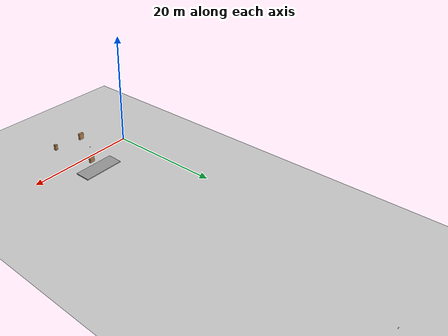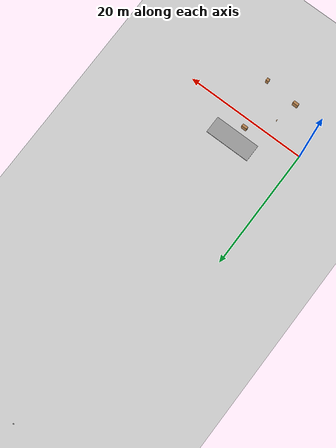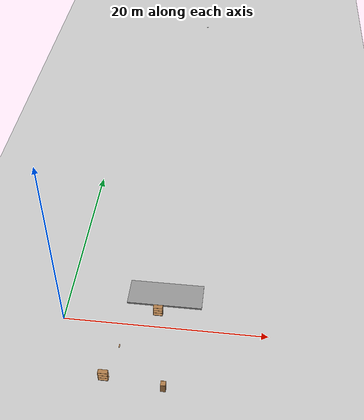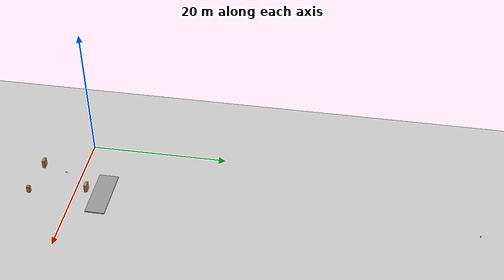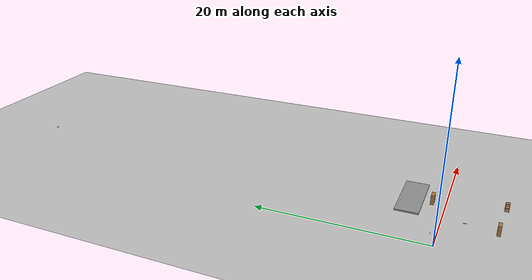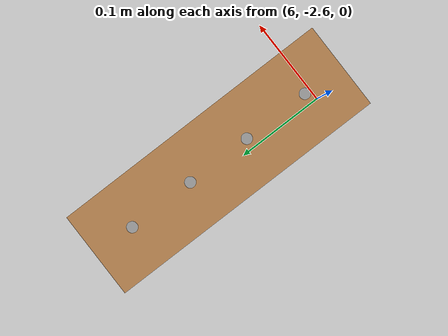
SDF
<sdf version="1.7">
 <world name="default">
  <physics type="ode">
   <ode>
    <solver>
     <type>quick</type>
     <iters>100</iters>
     <sor>1</sor>
     <use_dynamic_moi_rescaling>0</use_dynamic_moi_rescaling>
    </solver>
    <constraints>
     <cfm>0</cfm>
     <erp>0.9</erp>
     <contact_max_correcting_vel>0.1</contact_max_correcting_vel>
     <contact_surface_layer>0</contact_surface_layer>
    </constraints>
   </ode>
   <real_time_update_rate>-1</real_time_update_rate>
   <max_step_size>0.001</max_step_size>
   <real_time_factor>1</real_time_factor>
  </physics>
  <model name="ground_plane">
   <static>1</static>
   <link name="link">
    <collision name="collision">
     <geometry><plane><normal>0 0 1</normal><size>5000 5000</size></plane></geometry>
     <surface><friction><ode><mu>1</mu><mu2>1</mu2></ode></friction></surface>
    </collision>
    <visual name="runway">
     <pose>0 0 0.005 0 -0 0</pose>
     <cast_shadows>0</cast_shadows>
     <geometry><plane><normal>0 0 1</normal><size>1829 45</size></plane></geometry>
     <material>
      <script><uri>file://media/materials/scripts/gazebo.material</uri><name>Gazebo/Runway</name></script>
     </material>
    </visual>
    <visual name="grass">
     <pose>0 0 -0.1 0 -0 0</pose>
     <cast_shadows>0</cast_shadows>
     <geometry><plane><normal>0 0 1</normal><size>5000 5000</size></plane></geometry>
     <material>
      <script><uri>file://media/materials/scripts/gazebo.material</uri><name>Gazebo/Grass</name></script>
     </material>
    </visual>
   </link>
  </model>
  <light name="sun" type="directional">
   <pose>0 0 10 0 -0 0</pose>
   <diffuse>0.8 0.8 0.8 1</diffuse>
   <specular>0.2 0.2 0.2 1</specular>
   <attenuation>
    <range>1000</range>
    <constant>0.9</constant>
    <linear>0.01</linear>
    <quadratic>0.001</quadratic>
   </attenuation>
   <direction>-0.5 0.1 -0.9</direction>
   <spot><inner_angle>0</inner_angle><outer_angle>0</outer_angle><falloff>0</falloff></spot>
  </light>
  <gravity>0 0 -9.8</gravity>
  <magnetic_field>6e-06 2.3e-05 -4.2e-05</magnetic_field>
  <atmosphere type="adiabatic"/>
  <scene><ambient>0.4 0.4 0.4 1</ambient><background>0.7 0.7 0.7 1</background><shadows>1</shadows></scene>
  <spherical_coordinates>
   <surface_model>EARTH_WGS84</surface_model>
   <latitude_deg>0</latitude_deg>
   <longitude_deg>0</longitude_deg>
   <elevation>0</elevation>
   <heading_deg>0</heading_deg>
  </spherical_coordinates>
  <model name="grey_wall">
   <static>1</static>
   <link name="link">
    <pose>0 0 1.4 0 -0 0</pose>
    <collision name="collision"><geometry><box><size>7.5 0.2 2.8</size></box></geometry></collision>
    <visual name="visual">
     <cast_shadows>0</cast_shadows>
     <geometry><box><size>7.5 0.2 2.8</size></box></geometry>
     <material>
      <script>
       <uri>model://grey_wall/materials/scripts</uri>
       <uri>model://grey_wall/materials/textures</uri>
       <name>vrc/grey_wall</name>
      </script>
     </material>
    </visual>
   </link>
   <pose>9.62817 5.29875 0 1.56197 -0 0</pose>
  </model>
  <model name="bookshelf">
   <static>1</static>
   <link name="link">
    <inertial><mass>1</mass></inertial>
    <collision name="back">
     <pose>0 0.005 0.6 0 -0 0</pose>
     <geometry><box><size>0.9 0.01 1.2</size></box></geometry>
    </collision>
    <visual name="visual1">
     <pose>0 0.005 0.6 0 -0 0</pose>
     <geometry><box><size>0.9 0.01 1.2</size></box></geometry>
     <material>
      <script><uri>file://media/materials/scripts/gazebo.material</uri><name>Gazebo/Wood</name></script>
     </material>
    </visual>
    <collision name="left_side">
     <pose>0.45 -0.195 0.6 0 -0 0</pose>
     <geometry><box><size>0.02 0.4 1.2</size></box></geometry>
    </collision>
    <visual name="visual2">
     <pose>0.45 -0.195 0.6 0 -0 0</pose>
     <geometry><box><size>0.02 0.4 1.2</size></box></geometry>
     <material>
      <script><uri>file://media/materials/scripts/gazebo.material</uri><name>Gazebo/Wood</name></script>
     </material>
    </visual>
    <collision name="right_side">
     <pose>-0.45 -0.195 0.6 0 -0 0</pose>
     <geometry><box><size>0.02 0.4 1.2</size></box></geometry>
    </collision>
    <visual name="visual3">
     <pose>-0.45 -0.195 0.6 0 -0 0</pose>
     <geometry><box><size>0.02 0.4 1.2</size></box></geometry>
     <material>
      <script><uri>file://media/materials/scripts/gazebo.material</uri><name>Gazebo/Wood</name></script>
     </material>
    </visual>
    <collision name="bottom">
     <pose>0 -0.195 0.03 0 -0 0</pose>
     <geometry><box><size>0.88 0.4 0.06</size></box></geometry>
    </collision>
    <visual name="visual4">
     <pose>0 -0.195 0.03 0 -0 0</pose>
     <geometry><box><size>0.88 0.4 0.06</size></box></geometry>
     <material>
      <script><uri>file://media/materials/scripts/gazebo.material</uri><name>Gazebo/Wood</name></script>
     </material>
    </visual>
    <collision name="top">
     <pose>0 -0.195 1.19 0 -0 0</pose>
     <geometry><box><size>0.88 0.4 0.02</size></box></geometry>
    </collision>
    <visual name="visual5">
     <pose>0 -0.195 1.19 0 -0 0</pose>
     <geometry><box><size>0.88 0.4 0.02</size></box></geometry>
     <material>
      <script><uri>file://media/materials/scripts/gazebo.material</uri><name>Gazebo/Wood</name></script>
     </material>
    </visual>
    <collision name="low_shelf">
     <pose>0 -0.195 0.43 0 -0 0</pose>
     <geometry><box><size>0.88 0.4 0.02</size></box></geometry>
    </collision>
    <visual name="visual6">
     <pose>0 -0.195 0.43 0 -0 0</pose>
     <geometry><box><size>0.88 0.4 0.02</size></box></geometry>
     <material>
      <script><uri>file://media/materials/scripts/gazebo.material</uri><name>Gazebo/Wood</name></script>
     </material>
    </visual>
    <collision name="high_shelf">
     <pose>0 -0.195 0.8 0 -0 0</pose>
     <geometry><box><size>0.88 0.4 0.02</size></box></geometry>
    </collision>
    <visual name="visual7">
     <pose>0 -0.195 0.8 0 -0 0</pose>
     <geometry><box><size>0.88 0.4 0.02</size></box></geometry>
     <material>
      <script><uri>file://media/materials/scripts/gazebo.material</uri><name>Gazebo/Wood</name></script>
     </material>
    </visual>
   </link>
   <pose>9.1624 1.70468 0 0 -0 0</pose>
  </model>
  <model name="beer">
   <link name="link">
    <pose>0 0 0.115 0 -0 0</pose>
    <inertial>
     <mass>0.39</mass>
     <inertia><ixx>0.00058</ixx><ixy>0</ixy><ixz>0</ixz><iyy>0.00058</iyy><iyz>0</iyz><izz>0.00019</izz></inertia>
    </inertial>
    <collision name="collision">
     <geometry><cylinder><radius>0.055</radius><length>0.23</length></cylinder></geometry>
    </collision>
    <visual name="visual">
     <geometry><cylinder><radius>0.055</radius><length>0.23</length></cylinder></geometry>
     <material>
      <script>
       <uri>model://beer/materials/scripts</uri>
       <uri>model://beer/materials/textures</uri>
       <name>Beer/Diffuse</name>
      </script>
     </material>
    </visual>
   </link>
   <pose>9.64743 56.552 0.055 -1.59215 1.55418 1.54944</pose>
  </model>
  <model name="stone_10_2_5_1cm">
   <link name="link">
    <pose>0 0 0.005 0 -0 0</pose>
    <inertial>
     <mass>0.0628</mass>
     <inertia>
      <ixx>3.79417e-06</ixx>
      <ixy>0</ixy>
      <ixz>0</ixz>
      <iyy>5.28567e-05</iyy>
      <iyz>0</iyz>
      <izz>5.56042e-05</izz>
     </inertia>
    </inertial>
    <collision name="collision">
     <geometry><box><size>0.1 0.025 0.01</size></box></geometry>
     <surface>
      <contact>
       <poissons_ratio>0.15</poissons_ratio>
       <elastic_modulus>8e+10</elastic_modulus>
       <ode><kp>100000</kp><kd>100</kd><max_vel>100</max_vel><min_depth>0.001</min_depth></ode>
      </contact>
      <friction>
       <torsional>
        <coefficient>1</coefficient>
        <use_patch_radius>0</use_patch_radius>
        <surface_radius>0.01</surface_radius>
       </torsional>
      </friction>
     </surface>
    </collision>
    <visual name="visual">
     <geometry><box><size>0.1 0.025 0.01</size></box></geometry>
     <material>
      <script><uri>file://media/materials/scripts/gazebo.material</uri><name>Gazebo/Grey</name></script>
     </material>
    </visual>
   </link>
   <pose>2.46779 0.699198 -0.001002 0 -0 0</pose>
  </model>
  <model name="cabinet">
   <static>1</static>
   <link name="cabinet_bottom_plate">
    <inertial>
     <pose>0 0 -1 0 -0 0</pose>
     <inertia><ixx>2.05</ixx><ixy>0</ixy><ixz>0</ixz><iyy>2.05</iyy><iyz>0</iyz><izz>2.05</izz></inertia>
     <mass>25</mass>
    </inertial>
    <collision name="cabinet_bottom_plate_geom">
     <pose>0 0 0.01 0 -0 0</pose>
     <geometry><box><size>0.45 0.45 0.02</size></box></geometry>
    </collision>
    <visual name="cabinet_bottom_plate_geom_visual">
     <pose>0 0 0.01 0 -0 0</pose>
     <geometry><box><size>0.45 0.45 0.02</size></box></geometry>
     <material>
      <script><uri>file://media/materials/scripts/gazebo.material</uri><name>Gazebo/Wood</name></script>
     </material>
    </visual>
    <collision name="cabinet_bottom_plate_geom_cabinet_back_plate">
     <pose>0.235 0 0.51 0 -0 0</pose>
     <geometry><box><size>0.02 0.45 1.02</size></box></geometry>
    </collision>
    <visual name="cabinet_bottom_plate_geom_cabinet_back_plate_visual">
     <pose>0.235 0 0.51 0 -0 0</pose>
     <geometry><box><size>0.02 0.45 1.02</size></box></geometry>
     <material>
      <script><uri>file://media/materials/scripts/gazebo.material</uri><name>Gazebo/Wood</name></script>
     </material>
    </visual>
    <collision name="cabinet_bottom_plate_geom_cabinet_left_plate">
     <pose>0 0.235 0.51 0 -0 0</pose>
     <geometry><box><size>0.45 0.02 1.02</size></box></geometry>
    </collision>
    <visual name="cabinet_bottom_plate_geom_cabinet_left_plate_visual">
     <pose>0 0.235 0.51 0 -0 0</pose>
     <geometry><box><size>0.45 0.02 1.02</size></box></geometry>
     <material>
      <script><uri>file://media/materials/scripts/gazebo.material</uri><name>Gazebo/Wood</name></script>
     </material>
    </visual>
    <collision name="cabinet_bottom_plate_geom_cabinet_middle_plate">
     <pose>0 0 0.51 0 -0 0</pose>
     <geometry><box><size>0.45 0.45 0.02</size></box></geometry>
    </collision>
    <visual name="cabinet_bottom_plate_geom_cabinet_middle_plate_visual">
     <pose>0 0 0.51 0 -0 0</pose>
     <geometry><box><size>0.45 0.45 0.02</size></box></geometry>
     <material>
      <script><uri>file://media/materials/scripts/gazebo.material</uri><name>Gazebo/Wood</name></script>
     </material>
    </visual>
    <collision name="cabinet_bottom_plate_geom_cabinet_right_plate">
     <pose>0 -0.235 0.51 0 -0 0</pose>
     <geometry><box><size>0.45 0.02 1.02</size></box></geometry>
    </collision>
    <visual name="cabinet_bottom_plate_geom_cabinet_right_plate_visual">
     <pose>0 -0.235 0.51 0 -0 0</pose>
     <geometry><box><size>0.45 0.02 1.02</size></box></geometry>
     <material>
      <script><uri>file://media/materials/scripts/gazebo.material</uri><name>Gazebo/Wood</name></script>
     </material>
    </visual>
    <collision name="cabinet_bottom_plate_geom_cabinet_top_plate">
     <pose>0 0 1.01 0 -0 0</pose>
     <geometry><box><size>0.45 0.45 0.02</size></box></geometry>
    </collision>
    <visual name="cabinet_bottom_plate_geom_cabinet_top_plate_visual">
     <pose>0 0 1.01 0 -0 0</pose>
     <geometry><box><size>0.45 0.45 0.02</size></box></geometry>
     <material>
      <script><uri>file://media/materials/scripts/gazebo.material</uri><name>Gazebo/Wood</name></script>
     </material>
    </visual>
   </link>
   <pose>10.7223 -6.47152 0 0 -0 0</pose>
  </model>
  <model name="wooden_board">
   <link name="base">
    <pose>0 0 0.00523 0 -0 0</pose>
    <inertial>
     <mass>0.2765</mass>
     <inertia>
      <ixx>0.0025148</ixx>
      <ixy>0</ixy>
      <ixz>0</ixz>
      <iyy>0.00024037</iyy>
      <iyz>0</iyz>
      <izz>0.00275013</izz>
     </inertia>
    </inertial>
    <collision name="collision">
     <geometry><box><size>0.1016 0.3302 0.01046</size></box></geometry>
     <surface>
      <contact>
       <poissons_ratio>0.347</poissons_ratio>
       <elastic_modulus>8.8e+09</elastic_modulus>
       <ode><kp>100000</kp><kd>100</kd><max_vel>100</max_vel><min_depth>0.001</min_depth></ode>
      </contact>
      <friction>
       <torsional>
        <coefficient>1</coefficient>
        <use_patch_radius>0</use_patch_radius>
        <surface_radius>0.01</surface_radius>
       </torsional>
      </friction>
     </surface>
    </collision>
    <visual name="visual">
     <geometry><box><size>0.1016 0.3302 0.01046</size></box></geometry>
     <material>
      <script><uri>file://media/materials/scripts/gazebo.material</uri><name>Gazebo/Wood</name></script>
     </material>
    </visual>
    <visual name="tee_nut_1">
     <pose>0 -0.116 0 0 -0 0</pose>
     <geometry><cylinder><radius>0.00635</radius><length>0.0105646</length></cylinder></geometry>
     <material>
      <script><uri>file://media/materials/scripts/gazebo.material</uri><name>Gazebo/Grey</name></script>
     </material>
    </visual>
    <visual name="tee_nut_2">
     <pose>0 -0.038 0 0 -0 0</pose>
     <geometry><cylinder><radius>0.00635</radius><length>0.0105646</length></cylinder></geometry>
     <material>
      <script><uri>file://media/materials/scripts/gazebo.material</uri><name>Gazebo/Grey</name></script>
     </material>
    </visual>
    <visual name="tee_nut_3">
     <pose>0 0.038 0 0 -0 0</pose>
     <geometry><cylinder><radius>0.00635</radius><length>0.0105646</length></cylinder></geometry>
     <material>
      <script><uri>file://media/materials/scripts/gazebo.material</uri><name>Gazebo/Grey</name></script>
     </material>
    </visual>
    <visual name="tee_nut_4">
     <pose>0 0.116 0 0 -0 0</pose>
     <geometry><cylinder><radius>0.00635</radius><length>0.0105646</length></cylinder></geometry>
     <material>
      <script><uri>file://media/materials/scripts/gazebo.material</uri><name>Gazebo/Grey</name></script>
     </material>
    </visual>
   </link>
   <pose>6.01241 -2.47599 -0.001007 0 -0 0</pose>
  </model>
  <model name="bookshelf_0">
   <static>1</static>
   <link name="link">
    <inertial><mass>1</mass></inertial>
    <collision name="back">
     <pose>0 0.005 0.6 0 -0 0</pose>
     <geometry><box><size>0.9 0.01 1.2</size></box></geometry>
    </collision>
    <visual name="visual1">
     <pose>0 0.005 0.6 0 -0 0</pose>
     <geometry><box><size>0.9 0.01 1.2</size></box></geometry>
     <material>
      <script><uri>file://media/materials/scripts/gazebo.material</uri><name>Gazebo/Wood</name></script>
     </material>
    </visual>
    <collision name="left_side">
     <pose>0.45 -0.195 0.6 0 -0 0</pose>
     <geometry><box><size>0.02 0.4 1.2</size></box></geometry>
    </collision>
    <visual name="visual2">
     <pose>0.45 -0.195 0.6 0 -0 0</pose>
     <geometry><box><size>0.02 0.4 1.2</size></box></geometry>
     <material>
      <script><uri>file://media/materials/scripts/gazebo.material</uri><name>Gazebo/Wood</name></script>
     </material>
    </visual>
    <collision name="right_side">
     <pose>-0.45 -0.195 0.6 0 -0 0</pose>
     <geometry><box><size>0.02 0.4 1.2</size></box></geometry>
    </collision>
    <visual name="visual3">
     <pose>-0.45 -0.195 0.6 0 -0 0</pose>
     <geometry><box><size>0.02 0.4 1.2</size></box></geometry>
     <material>
      <script><uri>file://media/materials/scripts/gazebo.material</uri><name>Gazebo/Wood</name></script>
     </material>
    </visual>
    <collision name="bottom">
     <pose>0 -0.195 0.03 0 -0 0</pose>
     <geometry><box><size>0.88 0.4 0.06</size></box></geometry>
    </collision>
    <visual name="visual4">
     <pose>0 -0.195 0.03 0 -0 0</pose>
     <geometry><box><size>0.88 0.4 0.06</size></box></geometry>
     <material>
      <script><uri>file://media/materials/scripts/gazebo.material</uri><name>Gazebo/Wood</name></script>
     </material>
    </visual>
    <collision name="top">
     <pose>0 -0.195 1.19 0 -0 0</pose>
     <geometry><box><size>0.88 0.4 0.02</size></box></geometry>
    </collision>
    <visual name="visual5">
     <pose>0 -0.195 1.19 0 -0 0</pose>
     <geometry><box><size>0.88 0.4 0.02</size></box></geometry>
     <material>
      <script><uri>file://media/materials/scripts/gazebo.material</uri><name>Gazebo/Wood</name></script>
     </material>
    </visual>
    <collision name="low_shelf">
     <pose>0 -0.195 0.43 0 -0 0</pose>
     <geometry><box><size>0.88 0.4 0.02</size></box></geometry>
    </collision>
    <visual name="visual6">
     <pose>0 -0.195 0.43 0 -0 0</pose>
     <geometry><box><size>0.88 0.4 0.02</size></box></geometry>
     <material>
      <script><uri>file://media/materials/scripts/gazebo.material</uri><name>Gazebo/Wood</name></script>
     </material>
    </visual>
    <collision name="high_shelf">
     <pose>0 -0.195 0.8 0 -0 0</pose>
     <geometry><box><size>0.88 0.4 0.02</size></box></geometry>
    </collision>
    <visual name="visual7">
     <pose>0 -0.195 0.8 0 -0 0</pose>
     <geometry><box><size>0.88 0.4 0.02</size></box></geometry>
     <material>
      <script><uri>file://media/materials/scripts/gazebo.material</uri><name>Gazebo/Wood</name></script>
     </material>
    </visual>
   </link>
   <pose>5.19224 -5.81001 0 0 -0 0</pose>
  </model>
 </world>
</sdf>
